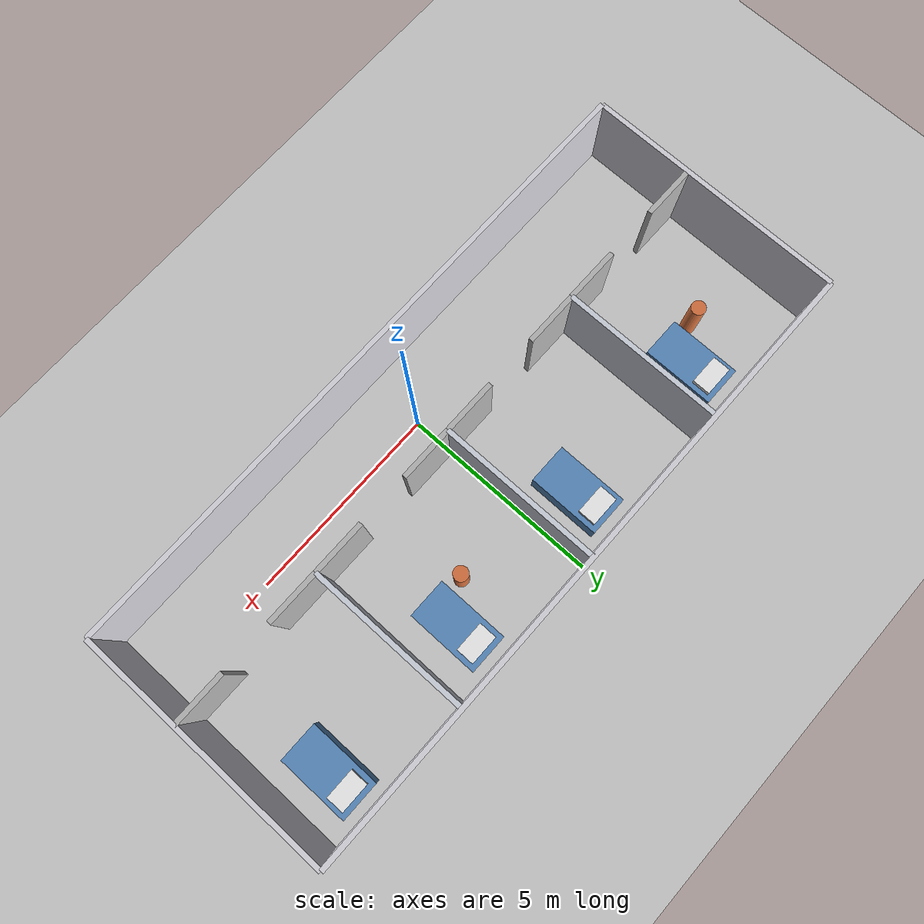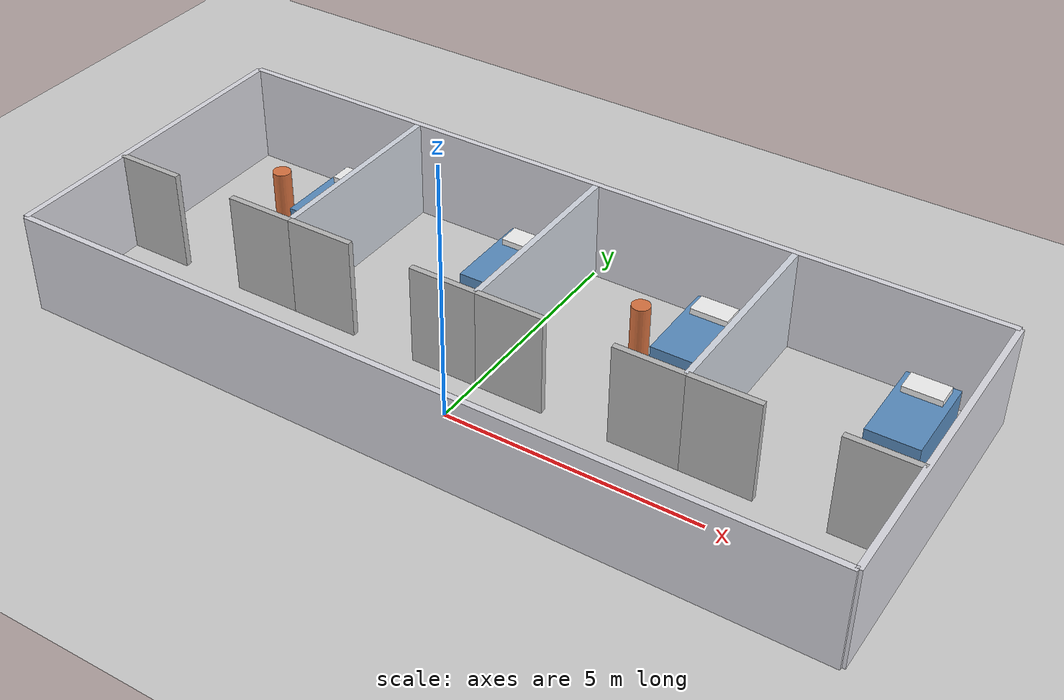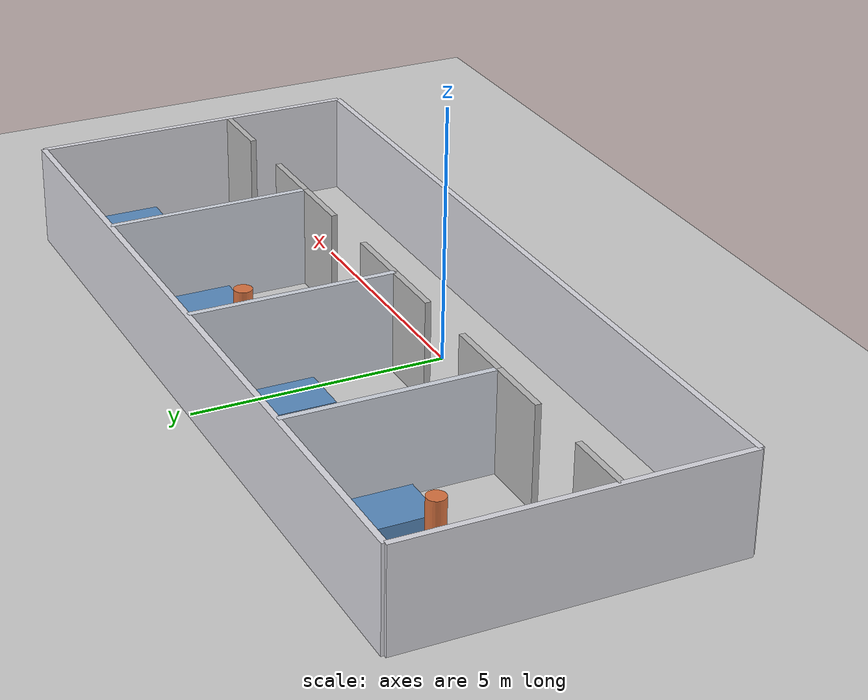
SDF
<?xml version="1.0" ?>
<sdf version="1.6">
  <world name="hospital">
    <include><uri>model://sun</uri></include>
    <include><uri>model://ground_plane</uri></include>

    <physics type="ode">
      <real_time_update_rate>1000</real_time_update_rate>
      <max_step_size>0.001</max_step_size>
    </physics>

    <!-- Minimal hospital geometry: one corridor and four fixed rooms. -->
    <model name="hospital_shell">
      <static>true</static>
      <link name="walls">
        <!-- Outer north/south walls -->
        <collision name="north_c"><pose>0 5 1 0 0 0</pose><geometry><box><size>16 0.12 2</size></box></geometry></collision>
        <visual name="north_v"><pose>0 5 1 0 0 0</pose><geometry><box><size>16 0.12 2</size></box></geometry><material><ambient>0.85 0.85 0.88 1</ambient><diffuse>0.85 0.85 0.88 1</diffuse></material></visual>
        <collision name="south_c"><pose>0 -1.5 1 0 0 0</pose><geometry><box><size>16 0.12 2</size></box></geometry></collision>
        <visual name="south_v"><pose>0 -1.5 1 0 0 0</pose><geometry><box><size>16 0.12 2</size></box></geometry><material><ambient>0.85 0.85 0.88 1</ambient><diffuse>0.85 0.85 0.88 1</diffuse></material></visual>
        <!-- End walls -->
        <collision name="west_c"><pose>-8 1.75 1 0 0 0</pose><geometry><box><size>0.12 6.5 2</size></box></geometry></collision>
        <visual name="west_v"><pose>-8 1.75 1 0 0 0</pose><geometry><box><size>0.12 6.5 2</size></box></geometry><material><ambient>0.85 0.85 0.88 1</ambient><diffuse>0.85 0.85 0.88 1</diffuse></material></visual>
        <collision name="east_c"><pose>8 1.75 1 0 0 0</pose><geometry><box><size>0.12 6.5 2</size></box></geometry></collision>
        <visual name="east_v"><pose>8 1.75 1 0 0 0</pose><geometry><box><size>0.12 6.5 2</size></box></geometry><material><ambient>0.85 0.85 0.88 1</ambient><diffuse>0.85 0.85 0.88 1</diffuse></material></visual>

        <!-- Room divider walls at x = -4, 0, 4 -->
        <collision name="div1_c"><pose>-4 3 1 0 0 0</pose><geometry><box><size>0.12 4 2</size></box></geometry></collision>
        <visual name="div1_v"><pose>-4 3 1 0 0 0</pose><geometry><box><size>0.12 4 2</size></box></geometry><material><ambient>0.82 0.84 0.88 1</ambient><diffuse>0.82 0.84 0.88 1</diffuse></material></visual>
        <collision name="div2_c"><pose>0 3 1 0 0 0</pose><geometry><box><size>0.12 4 2</size></box></geometry></collision>
        <visual name="div2_v"><pose>0 3 1 0 0 0</pose><geometry><box><size>0.12 4 2</size></box></geometry><material><ambient>0.82 0.84 0.88 1</ambient><diffuse>0.82 0.84 0.88 1</diffuse></material></visual>
        <collision name="div3_c"><pose>4 3 1 0 0 0</pose><geometry><box><size>0.12 4 2</size></box></geometry></collision>
        <visual name="div3_v"><pose>4 3 1 0 0 0</pose><geometry><box><size>0.12 4 2</size></box></geometry><material><ambient>0.82 0.84 0.88 1</ambient><diffuse>0.82 0.84 0.88 1</diffuse></material></visual>

        <!-- Front walls, each with a 1.3 m doorway centered on the room. -->
        <!-- Room 1 -->
        <collision name="r1_front_l_c"><pose>-7.325 1 1 0 0 0</pose><geometry><box><size>1.35 0.12 2</size></box></geometry></collision>
        <visual name="r1_front_l_v"><pose>-7.325 1 1 0 0 0</pose><geometry><box><size>1.35 0.12 2</size></box></geometry></visual>
        <collision name="r1_front_r_c"><pose>-4.675 1 1 0 0 0</pose><geometry><box><size>1.35 0.12 2</size></box></geometry></collision>
        <visual name="r1_front_r_v"><pose>-4.675 1 1 0 0 0</pose><geometry><box><size>1.35 0.12 2</size></box></geometry></visual>
        <!-- Room 2 -->
        <collision name="r2_front_l_c"><pose>-3.325 1 1 0 0 0</pose><geometry><box><size>1.35 0.12 2</size></box></geometry></collision>
        <visual name="r2_front_l_v"><pose>-3.325 1 1 0 0 0</pose><geometry><box><size>1.35 0.12 2</size></box></geometry></visual>
        <collision name="r2_front_r_c"><pose>-0.675 1 1 0 0 0</pose><geometry><box><size>1.35 0.12 2</size></box></geometry></collision>
        <visual name="r2_front_r_v"><pose>-0.675 1 1 0 0 0</pose><geometry><box><size>1.35 0.12 2</size></box></geometry></visual>
        <!-- Room 3 -->
        <collision name="r3_front_l_c"><pose>0.675 1 1 0 0 0</pose><geometry><box><size>1.35 0.12 2</size></box></geometry></collision>
        <visual name="r3_front_l_v"><pose>0.675 1 1 0 0 0</pose><geometry><box><size>1.35 0.12 2</size></box></geometry></visual>
        <collision name="r3_front_r_c"><pose>3.325 1 1 0 0 0</pose><geometry><box><size>1.35 0.12 2</size></box></geometry></collision>
        <visual name="r3_front_r_v"><pose>3.325 1 1 0 0 0</pose><geometry><box><size>1.35 0.12 2</size></box></geometry></visual>
        <!-- Room 4 -->
        <collision name="r4_front_l_c"><pose>4.675 1 1 0 0 0</pose><geometry><box><size>1.35 0.12 2</size></box></geometry></collision>
        <visual name="r4_front_l_v"><pose>4.675 1 1 0 0 0</pose><geometry><box><size>1.35 0.12 2</size></box></geometry></visual>
        <collision name="r4_front_r_c"><pose>7.325 1 1 0 0 0</pose><geometry><box><size>1.35 0.12 2</size></box></geometry></collision>
        <visual name="r4_front_r_v"><pose>7.325 1 1 0 0 0</pose><geometry><box><size>1.35 0.12 2</size></box></geometry></visual>
      </link>
    </model>

    <!-- Beds: intentionally offset to the right of the LiDAR patient-check line. -->
    <model name="bed_m6"><static>true</static><pose>-5.15 3.8 0 0 0 0</pose>
      <link name="bed">
        <collision name="base_c"><pose>0 0 0.30 0 0 0</pose><geometry><box><size>1.0 1.8 0.60</size></box></geometry></collision>
        <visual name="base_v"><pose>0 0 0.30 0 0 0</pose><geometry><box><size>1.0 1.8 0.60</size></box></geometry><material><ambient>0.35 0.55 0.75 1</ambient><diffuse>0.35 0.55 0.75 1</diffuse></material></visual>
        <collision name="pillow_c"><pose>0 0.55 0.66 0 0 0</pose><geometry><box><size>0.75 0.45 0.12</size></box></geometry></collision>
        <visual name="pillow_v"><pose>0 0.55 0.66 0 0 0</pose><geometry><box><size>0.75 0.45 0.12</size></box></geometry><material><ambient>0.95 0.95 0.95 1</ambient><diffuse>0.95 0.95 0.95 1</diffuse></material></visual>
      </link>
    </model>
    <model name="bed_m2"><static>true</static><pose>-1.15 3.8 0 0 0 0</pose>
      <link name="bed">
        <collision name="base_c"><pose>0 0 0.30 0 0 0</pose><geometry><box><size>1.0 1.8 0.60</size></box></geometry></collision>
        <visual name="base_v"><pose>0 0 0.30 0 0 0</pose><geometry><box><size>1.0 1.8 0.60</size></box></geometry><material><ambient>0.35 0.55 0.75 1</ambient><diffuse>0.35 0.55 0.75 1</diffuse></material></visual>
        <collision name="pillow_c"><pose>0 0.55 0.66 0 0 0</pose><geometry><box><size>0.75 0.45 0.12</size></box></geometry></collision>
        <visual name="pillow_v"><pose>0 0.55 0.66 0 0 0</pose><geometry><box><size>0.75 0.45 0.12</size></box></geometry><material><ambient>0.95 0.95 0.95 1</ambient><diffuse>0.95 0.95 0.95 1</diffuse></material></visual>
      </link>
    </model>
    <model name="bed_2"><static>true</static><pose>2.85 3.8 0 0 0 0</pose>
      <link name="bed">
        <collision name="base_c"><pose>0 0 0.30 0 0 0</pose><geometry><box><size>1.0 1.8 0.60</size></box></geometry></collision>
        <visual name="base_v"><pose>0 0 0.30 0 0 0</pose><geometry><box><size>1.0 1.8 0.60</size></box></geometry><material><ambient>0.35 0.55 0.75 1</ambient><diffuse>0.35 0.55 0.75 1</diffuse></material></visual>
        <collision name="pillow_c"><pose>0 0.55 0.66 0 0 0</pose><geometry><box><size>0.75 0.45 0.12</size></box></geometry></collision>
        <visual name="pillow_v"><pose>0 0.55 0.66 0 0 0</pose><geometry><box><size>0.75 0.45 0.12</size></box></geometry><material><ambient>0.95 0.95 0.95 1</ambient><diffuse>0.95 0.95 0.95 1</diffuse></material></visual>
      </link>
    </model>
    <model name="bed_6"><static>true</static><pose>6.85 3.8 0 0 0 0</pose>
      <link name="bed">
        <collision name="base_c"><pose>0 0 0.30 0 0 0</pose><geometry><box><size>1.0 1.8 0.60</size></box></geometry></collision>
        <visual name="base_v"><pose>0 0 0.30 0 0 0</pose><geometry><box><size>1.0 1.8 0.60</size></box></geometry><material><ambient>0.35 0.55 0.75 1</ambient><diffuse>0.35 0.55 0.75 1</diffuse></material></visual>
        <collision name="pillow_c"><pose>0 0.55 0.66 0 0 0</pose><geometry><box><size>0.75 0.45 0.12</size></box></geometry></collision>
        <visual name="pillow_v"><pose>0 0.55 0.66 0 0 0</pose><geometry><box><size>0.75 0.45 0.12</size></box></geometry><material><ambient>0.95 0.95 0.95 1</ambient><diffuse>0.95 0.95 0.95 1</diffuse></material></visual>
      </link>
    </model>
    <!-- Simulated patients: Room 1 and Room 3 occupied; Room 2 and Room 4 empty. -->
    <model name="patient_room_1"><static>true</static><pose>-6 3.15 0 0 0 0</pose>
      <link name="patient"><collision name="c"><pose>0 0 0.60 0 0 0</pose><geometry><cylinder><radius>0.18</radius><length>1.20</length></cylinder></geometry></collision>
      <visual name="v"><pose>0 0 0.60 0 0 0</pose><geometry><cylinder><radius>0.18</radius><length>1.20</length></cylinder></geometry><material><ambient>0.85 0.45 0.25 1</ambient><diffuse>0.85 0.45 0.25 1</diffuse></material></visual></link>
    </model>
    <model name="patient_room_3"><static>true</static><pose>2 3.15 0 0 0 0</pose>
      <link name="patient"><collision name="c"><pose>0 0 0.60 0 0 0</pose><geometry><cylinder><radius>0.18</radius><length>1.20</length></cylinder></geometry></collision>
      <visual name="v"><pose>0 0 0.60 0 0 0</pose><geometry><cylinder><radius>0.18</radius><length>1.20</length></cylinder></geometry><material><ambient>0.85 0.45 0.25 1</ambient><diffuse>0.85 0.45 0.25 1</diffuse></material></visual></link>
    </model>
  </world>
</sdf>
